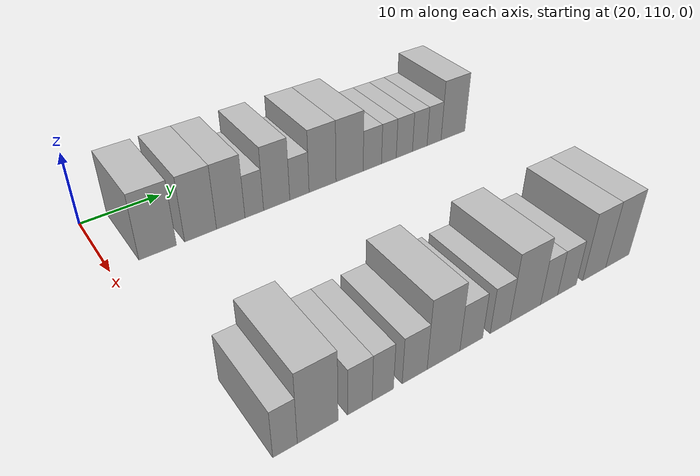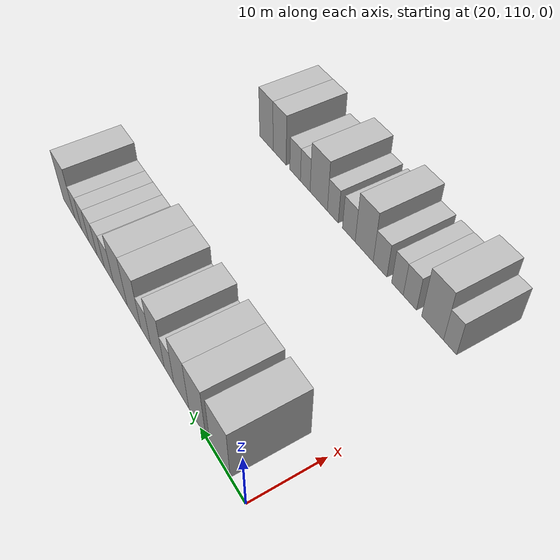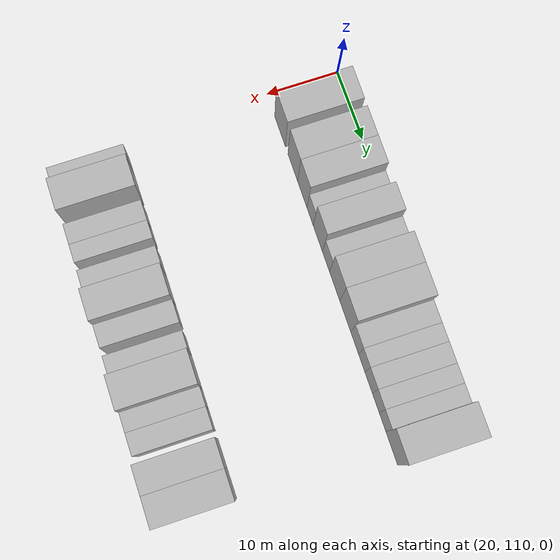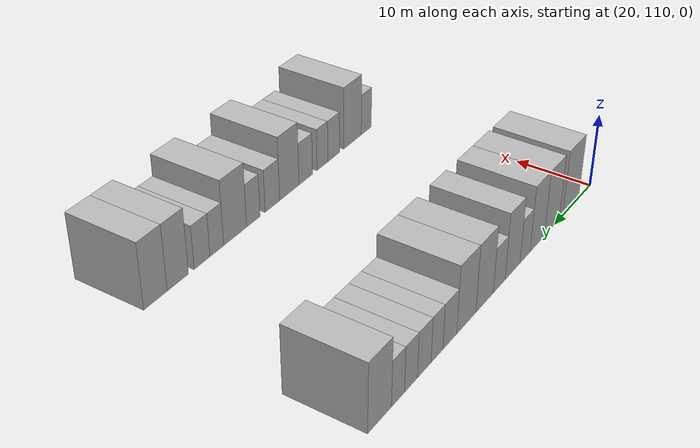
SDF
<sdf version="1.6">
 <world name="default">
  <model name="building_87">
   <static>1</static>
   <pose>25.0000 115.5539 0 0.000000 0.000000 0.000000</pose>
   <link name="link">
    <pose>0 0 4.50 0 0 0</pose>
    <collision name="collision"><geometry><box><size>10.0000 4.4764 9.0000</size></box></geometry></collision>
    <visual name="visual">
     <cast_shadows>0</cast_shadows>
     <geometry><box><size>10.0000 4.4764 9.0000</size></box></geometry>
     <material>
      <script>
       <uri>model://HANNAS_wall/materials/scripts</uri>
       <uri>model://HANNAS_wall/materials/textures</uri>
       <name>vrc/HANNAS_wall</name>
      </script>
     </material>
    </visual>
   </link>
  </model>
  <model name="building_88">
   <static>1</static>
   <pose>25.0000 120.8018 0 0.000000 0.000000 0.000000</pose>
   <link name="link">
    <pose>0 0 4.50 0 0 0</pose>
    <collision name="collision"><geometry><box><size>10.0000 4.0196 9.0000</size></box></geometry></collision>
    <visual name="visual">
     <cast_shadows>0</cast_shadows>
     <geometry><box><size>10.0000 4.0196 9.0000</size></box></geometry>
     <material>
      <script>
       <uri>model://HANNAS_wall/materials/scripts</uri>
       <uri>model://HANNAS_wall/materials/textures</uri>
       <name>vrc/HANNAS_wall</name>
      </script>
     </material>
    </visual>
   </link>
  </model>
  <model name="building_89">
   <static>1</static>
   <pose>25.0000 124.6734 0 0.000000 0.000000 0.000000</pose>
   <link name="link">
    <pose>0 0 4.50 0 0 0</pose>
    <collision name="collision"><geometry><box><size>10.0000 3.7235 9.0000</size></box></geometry></collision>
    <visual name="visual">
     <cast_shadows>0</cast_shadows>
     <geometry><box><size>10.0000 3.7235 9.0000</size></box></geometry>
     <material>
      <script>
       <uri>model://HANNAS_wall/materials/scripts</uri>
       <uri>model://HANNAS_wall/materials/textures</uri>
       <name>vrc/HANNAS_wall</name>
      </script>
     </material>
    </visual>
   </link>
  </model>
  <model name="building_90">
   <static>1</static>
   <pose>25.0000 127.7952 0 0.000000 0.000000 0.000000</pose>
   <link name="link">
    <pose>0 0 3.00 0 0 0</pose>
    <collision name="collision"><geometry><box><size>10.0000 2.5201 6.0000</size></box></geometry></collision>
    <visual name="visual">
     <cast_shadows>0</cast_shadows>
     <geometry><box><size>10.0000 2.5201 6.0000</size></box></geometry>
     <material>
      <script>
       <uri>model://HANNAS_wall/materials/scripts</uri>
       <uri>model://HANNAS_wall/materials/textures</uri>
       <name>vrc/HANNAS_wall</name>
      </script>
     </material>
    </visual>
   </link>
  </model>
  <model name="building_91">
   <static>1</static>
   <pose>25.0000 130.8812 0 0.000000 0.000000 0.000000</pose>
   <link name="link">
    <pose>0 0 4.50 0 0 0</pose>
    <collision name="collision"><geometry><box><size>10.0000 3.6520 9.0000</size></box></geometry></collision>
    <visual name="visual">
     <cast_shadows>0</cast_shadows>
     <geometry><box><size>10.0000 3.6520 9.0000</size></box></geometry>
     <material>
      <script>
       <uri>model://HANNAS_wall/materials/scripts</uri>
       <uri>model://HANNAS_wall/materials/textures</uri>
       <name>vrc/HANNAS_wall</name>
      </script>
     </material>
    </visual>
   </link>
  </model>
  <model name="building_92">
   <static>1</static>
   <pose>25.0000 134.0955 0 0.000000 0.000000 0.000000</pose>
   <link name="link">
    <pose>0 0 3.00 0 0 0</pose>
    <collision name="collision"><geometry><box><size>10.0000 2.7766 6.0000</size></box></geometry></collision>
    <visual name="visual">
     <cast_shadows>0</cast_shadows>
     <geometry><box><size>10.0000 2.7766 6.0000</size></box></geometry>
     <material>
      <script>
       <uri>model://HANNAS_wall/materials/scripts</uri>
       <uri>model://HANNAS_wall/materials/textures</uri>
       <name>vrc/HANNAS_wall</name>
      </script>
     </material>
    </visual>
   </link>
  </model>
  <model name="building_93">
   <static>1</static>
   <pose>25.0000 137.4864 0 0.000000 0.000000 0.000000</pose>
   <link name="link">
    <pose>0 0 4.50 0 0 0</pose>
    <collision name="collision"><geometry><box><size>10.0000 4.0050 9.0000</size></box></geometry></collision>
    <visual name="visual">
     <cast_shadows>0</cast_shadows>
     <geometry><box><size>10.0000 4.0050 9.0000</size></box></geometry>
     <material>
      <script>
       <uri>model://HANNAS_wall/materials/scripts</uri>
       <uri>model://HANNAS_wall/materials/textures</uri>
       <name>vrc/HANNAS_wall</name>
      </script>
     </material>
    </visual>
   </link>
  </model>
  <model name="building_94">
   <static>1</static>
   <pose>25.0000 141.5868 0 0.000000 0.000000 0.000000</pose>
   <link name="link">
    <pose>0 0 4.50 0 0 0</pose>
    <collision name="collision"><geometry><box><size>10.0000 4.1957 9.0000</size></box></geometry></collision>
    <visual name="visual">
     <cast_shadows>0</cast_shadows>
     <geometry><box><size>10.0000 4.1957 9.0000</size></box></geometry>
     <material>
      <script>
       <uri>model://HANNAS_wall/materials/scripts</uri>
       <uri>model://HANNAS_wall/materials/textures</uri>
       <name>vrc/HANNAS_wall</name>
      </script>
     </material>
    </visual>
   </link>
  </model>
  <model name="building_95">
   <static>1</static>
   <pose>25.0000 145.1538 0 0.000000 0.000000 0.000000</pose>
   <link name="link">
    <pose>0 0 3.00 0 0 0</pose>
    <collision name="collision"><geometry><box><size>10.0000 2.9384 6.0000</size></box></geometry></collision>
    <visual name="visual">
     <cast_shadows>0</cast_shadows>
     <geometry><box><size>10.0000 2.9384 6.0000</size></box></geometry>
     <material>
      <script>
       <uri>model://HANNAS_wall/materials/scripts</uri>
       <uri>model://HANNAS_wall/materials/textures</uri>
       <name>vrc/HANNAS_wall</name>
      </script>
     </material>
    </visual>
   </link>
  </model>
  <model name="building_96">
   <static>1</static>
   <pose>25.0000 147.8323 0 0.000000 0.000000 0.000000</pose>
   <link name="link">
    <pose>0 0 3.00 0 0 0</pose>
    <collision name="collision"><geometry><box><size>10.0000 2.4186 6.0000</size></box></geometry></collision>
    <visual name="visual">
     <cast_shadows>0</cast_shadows>
     <geometry><box><size>10.0000 2.4186 6.0000</size></box></geometry>
     <material>
      <script>
       <uri>model://HANNAS_wall/materials/scripts</uri>
       <uri>model://HANNAS_wall/materials/textures</uri>
       <name>vrc/HANNAS_wall</name>
      </script>
     </material>
    </visual>
   </link>
  </model>
  <model name="building_97">
   <static>1</static>
   <pose>25.0000 150.4074 0 0.000000 0.000000 0.000000</pose>
   <link name="link">
    <pose>0 0 3.00 0 0 0</pose>
    <collision name="collision"><geometry><box><size>10.0000 2.7315 6.0000</size></box></geometry></collision>
    <visual name="visual">
     <cast_shadows>0</cast_shadows>
     <geometry><box><size>10.0000 2.7315 6.0000</size></box></geometry>
     <material>
      <script>
       <uri>model://HANNAS_wall/materials/scripts</uri>
       <uri>model://HANNAS_wall/materials/textures</uri>
       <name>vrc/HANNAS_wall</name>
      </script>
     </material>
    </visual>
   </link>
  </model>
  <model name="building_98">
   <static>1</static>
   <pose>25.0000 153.0281 0 0.000000 0.000000 0.000000</pose>
   <link name="link">
    <pose>0 0 3.00 0 0 0</pose>
    <collision name="collision"><geometry><box><size>10.0000 2.5101 6.0000</size></box></geometry></collision>
    <visual name="visual">
     <cast_shadows>0</cast_shadows>
     <geometry><box><size>10.0000 2.5101 6.0000</size></box></geometry>
     <material>
      <script>
       <uri>model://HANNAS_wall/materials/scripts</uri>
       <uri>model://HANNAS_wall/materials/textures</uri>
       <name>vrc/HANNAS_wall</name>
      </script>
     </material>
    </visual>
   </link>
  </model>
  <model name="building_99">
   <static>1</static>
   <pose>25.0000 155.5110 0 0.000000 0.000000 0.000000</pose>
   <link name="link">
    <pose>0 0 3.00 0 0 0</pose>
    <collision name="collision"><geometry><box><size>10.0000 2.4556 6.0000</size></box></geometry></collision>
    <visual name="visual">
     <cast_shadows>0</cast_shadows>
     <geometry><box><size>10.0000 2.4556 6.0000</size></box></geometry>
     <material>
      <script>
       <uri>model://HANNAS_wall/materials/scripts</uri>
       <uri>model://HANNAS_wall/materials/textures</uri>
       <name>vrc/HANNAS_wall</name>
      </script>
     </material>
    </visual>
   </link>
  </model>
  <model name="building_100">
   <static>1</static>
   <pose>25.0000 158.8963 0 0.000000 0.000000 0.000000</pose>
   <link name="link">
    <pose>0 0 4.50 0 0 0</pose>
    <collision name="collision"><geometry><box><size>10.0000 4.3149 9.0000</size></box></geometry></collision>
    <visual name="visual">
     <cast_shadows>0</cast_shadows>
     <geometry><box><size>10.0000 4.3149 9.0000</size></box></geometry>
     <material>
      <script>
       <uri>model://HANNAS_wall/materials/scripts</uri>
       <uri>model://HANNAS_wall/materials/textures</uri>
       <name>vrc/HANNAS_wall</name>
      </script>
     </material>
    </visual>
   </link>
  </model>
  <model name="building_188">
   <static>1</static>
   <pose>55.0000 114.2147 0 0.000000 0.000000 0.000000</pose>
   <link name="link">
    <pose>0 0 3.00 0 0 0</pose>
    <collision name="collision"><geometry><box><size>10.0000 2.4139 6.0000</size></box></geometry></collision>
    <visual name="visual">
     <cast_shadows>0</cast_shadows>
     <geometry><box><size>10.0000 2.4139 6.0000</size></box></geometry>
     <material>
      <script>
       <uri>model://HANNAS_wall/materials/scripts</uri>
       <uri>model://HANNAS_wall/materials/textures</uri>
       <name>vrc/HANNAS_wall</name>
      </script>
     </material>
    </visual>
   </link>
  </model>
  <model name="building_189">
   <static>1</static>
   <pose>55.0000 117.5157 0 0.000000 0.000000 0.000000</pose>
   <link name="link">
    <pose>0 0 4.50 0 0 0</pose>
    <collision name="collision"><geometry><box><size>10.0000 4.1881 9.0000</size></box></geometry></collision>
    <visual name="visual">
     <cast_shadows>0</cast_shadows>
     <geometry><box><size>10.0000 4.1881 9.0000</size></box></geometry>
     <material>
      <script>
       <uri>model://HANNAS_wall/materials/scripts</uri>
       <uri>model://HANNAS_wall/materials/textures</uri>
       <name>vrc/HANNAS_wall</name>
      </script>
     </material>
    </visual>
   </link>
  </model>
  <model name="building_190">
   <static>1</static>
   <pose>55.0000 121.9585 0 0.000000 0.000000 0.000000</pose>
   <link name="link">
    <pose>0 0 3.00 0 0 0</pose>
    <collision name="collision"><geometry><box><size>10.0000 2.6974 6.0000</size></box></geometry></collision>
    <visual name="visual">
     <cast_shadows>0</cast_shadows>
     <geometry><box><size>10.0000 2.6974 6.0000</size></box></geometry>
     <material>
      <script>
       <uri>model://HANNAS_wall/materials/scripts</uri>
       <uri>model://HANNAS_wall/materials/textures</uri>
       <name>vrc/HANNAS_wall</name>
      </script>
     </material>
    </visual>
   </link>
  </model>
  <model name="building_191">
   <static>1</static>
   <pose>55.0000 124.5111 0 0.000000 0.000000 0.000000</pose>
   <link name="link">
    <pose>0 0 3.00 0 0 0</pose>
    <collision name="collision"><geometry><box><size>10.0000 2.4079 6.0000</size></box></geometry></collision>
    <visual name="visual">
     <cast_shadows>0</cast_shadows>
     <geometry><box><size>10.0000 2.4079 6.0000</size></box></geometry>
     <material>
      <script>
       <uri>model://HANNAS_wall/materials/scripts</uri>
       <uri>model://HANNAS_wall/materials/textures</uri>
       <name>vrc/HANNAS_wall</name>
      </script>
     </material>
    </visual>
   </link>
  </model>
  <model name="building_192">
   <static>1</static>
   <pose>55.0000 128.1963 0 0.000000 0.000000 0.000000</pose>
   <link name="link">
    <pose>0 0 3.00 0 0 0</pose>
    <collision name="collision"><geometry><box><size>10.0000 2.9625 6.0000</size></box></geometry></collision>
    <visual name="visual">
     <cast_shadows>0</cast_shadows>
     <geometry><box><size>10.0000 2.9625 6.0000</size></box></geometry>
     <material>
      <script>
       <uri>model://HANNAS_wall/materials/scripts</uri>
       <uri>model://HANNAS_wall/materials/textures</uri>
       <name>vrc/HANNAS_wall</name>
      </script>
     </material>
    </visual>
   </link>
  </model>
  <model name="building_193">
   <static>1</static>
   <pose>55.0000 131.7096 0 0.000000 0.000000 0.000000</pose>
   <link name="link">
    <pose>0 0 4.50 0 0 0</pose>
    <collision name="collision"><geometry><box><size>10.0000 4.0641 9.0000</size></box></geometry></collision>
    <visual name="visual">
     <cast_shadows>0</cast_shadows>
     <geometry><box><size>10.0000 4.0641 9.0000</size></box></geometry>
     <material>
      <script>
       <uri>model://HANNAS_wall/materials/scripts</uri>
       <uri>model://HANNAS_wall/materials/textures</uri>
       <name>vrc/HANNAS_wall</name>
      </script>
     </material>
    </visual>
   </link>
  </model>
  <model name="building_194">
   <static>1</static>
   <pose>55.0000 135.2241 0 0.000000 0.000000 0.000000</pose>
   <link name="link">
    <pose>0 0 3.00 0 0 0</pose>
    <collision name="collision"><geometry><box><size>10.0000 2.9650 6.0000</size></box></geometry></collision>
    <visual name="visual">
     <cast_shadows>0</cast_shadows>
     <geometry><box><size>10.0000 2.9650 6.0000</size></box></geometry>
     <material>
      <script>
       <uri>model://HANNAS_wall/materials/scripts</uri>
       <uri>model://HANNAS_wall/materials/textures</uri>
       <name>vrc/HANNAS_wall</name>
      </script>
     </material>
    </visual>
   </link>
  </model>
  <model name="building_195">
   <static>1</static>
   <pose>55.0000 139.0342 0 0.000000 0.000000 0.000000</pose>
   <link name="link">
    <pose>0 0 3.00 0 0 0</pose>
    <collision name="collision"><geometry><box><size>10.0000 2.6552 6.0000</size></box></geometry></collision>
    <visual name="visual">
     <cast_shadows>0</cast_shadows>
     <geometry><box><size>10.0000 2.6552 6.0000</size></box></geometry>
     <material>
      <script>
       <uri>model://HANNAS_wall/materials/scripts</uri>
       <uri>model://HANNAS_wall/materials/textures</uri>
       <name>vrc/HANNAS_wall</name>
      </script>
     </material>
    </visual>
   </link>
  </model>
  <model name="building_196">
   <static>1</static>
   <pose>55.0000 142.5465 0 0.000000 0.000000 0.000000</pose>
   <link name="link">
    <pose>0 0 4.50 0 0 0</pose>
    <collision name="collision"><geometry><box><size>10.0000 4.3694 9.0000</size></box></geometry></collision>
    <visual name="visual">
     <cast_shadows>0</cast_shadows>
     <geometry><box><size>10.0000 4.3694 9.0000</size></box></geometry>
     <material>
      <script>
       <uri>model://HANNAS_wall/materials/scripts</uri>
       <uri>model://HANNAS_wall/materials/textures</uri>
       <name>vrc/HANNAS_wall</name>
      </script>
     </material>
    </visual>
   </link>
  </model>
  <model name="building_197">
   <static>1</static>
   <pose>55.0000 145.9952 0 0.000000 0.000000 0.000000</pose>
   <link name="link">
    <pose>0 0 3.00 0 0 0</pose>
    <collision name="collision"><geometry><box><size>10.0000 2.5280 6.0000</size></box></geometry></collision>
    <visual name="visual">
     <cast_shadows>0</cast_shadows>
     <geometry><box><size>10.0000 2.5280 6.0000</size></box></geometry>
     <material>
      <script>
       <uri>model://HANNAS_wall/materials/scripts</uri>
       <uri>model://HANNAS_wall/materials/textures</uri>
       <name>vrc/HANNAS_wall</name>
      </script>
     </material>
    </visual>
   </link>
  </model>
  <model name="building_198">
   <static>1</static>
   <pose>55.0000 148.6784 0 0.000000 0.000000 0.000000</pose>
   <link name="link">
    <pose>0 0 3.00 0 0 0</pose>
    <collision name="collision"><geometry><box><size>10.0000 2.8383 6.0000</size></box></geometry></collision>
    <visual name="visual">
     <cast_shadows>0</cast_shadows>
     <geometry><box><size>10.0000 2.8383 6.0000</size></box></geometry>
     <material>
      <script>
       <uri>model://HANNAS_wall/materials/scripts</uri>
       <uri>model://HANNAS_wall/materials/textures</uri>
       <name>vrc/HANNAS_wall</name>
      </script>
     </material>
    </visual>
   </link>
  </model>
  <model name="building_199">
   <static>1</static>
   <pose>55.0000 152.9323 0 0.000000 0.000000 0.000000</pose>
   <link name="link">
    <pose>0 0 4.50 0 0 0</pose>
    <collision name="collision"><geometry><box><size>10.0000 3.6696 9.0000</size></box></geometry></collision>
    <visual name="visual">
     <cast_shadows>0</cast_shadows>
     <geometry><box><size>10.0000 3.6696 9.0000</size></box></geometry>
     <material>
      <script>
       <uri>model://HANNAS_wall/materials/scripts</uri>
       <uri>model://HANNAS_wall/materials/textures</uri>
       <name>vrc/HANNAS_wall</name>
      </script>
     </material>
    </visual>
   </link>
  </model>
  <model name="building_200">
   <static>1</static>
   <pose>55.0000 156.7093 0 0.000000 0.000000 0.000000</pose>
   <link name="link">
    <pose>0 0 4.50 0 0 0</pose>
    <collision name="collision"><geometry><box><size>10.0000 3.8843 9.0000</size></box></geometry></collision>
    <visual name="visual">
     <cast_shadows>0</cast_shadows>
     <geometry><box><size>10.0000 3.8843 9.0000</size></box></geometry>
     <material>
      <script>
       <uri>model://HANNAS_wall/materials/scripts</uri>
       <uri>model://HANNAS_wall/materials/textures</uri>
       <name>vrc/HANNAS_wall</name>
      </script>
     </material>
    </visual>
   </link>
  </model>
 </world>
</sdf>
